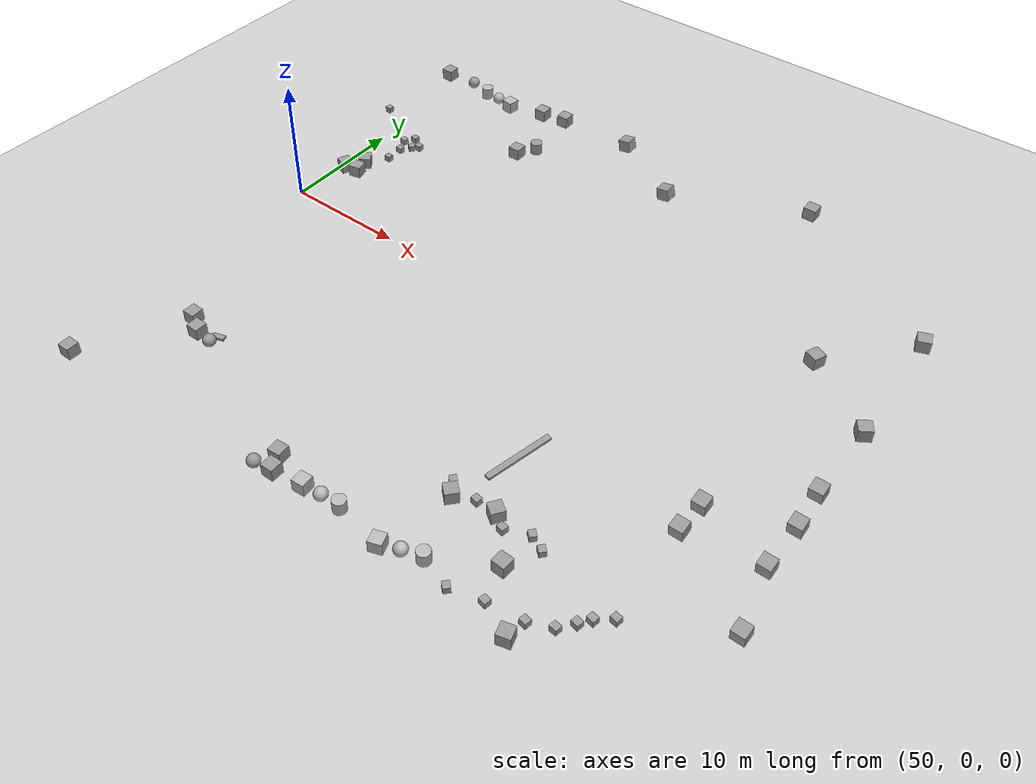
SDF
<sdf version="1.6">
 <world name="default">
  <model name="ground_plane">
   <static>1</static>
   <link name="link">
    <collision name="collision">
     <geometry><plane><normal>0 0 1</normal><size>100 100</size></plane></geometry>
     <surface><friction><ode><mu>100</mu><mu2>50</mu2></ode></friction></surface>
    </collision>
    <visual name="visual">
     <cast_shadows>0</cast_shadows>
     <geometry><plane><normal>0 0 1</normal><size>100 100</size></plane></geometry>
    </visual>
   </link>
  </model>
  <model name="unit_box_2">
   <pose>51.8431 4.81712 0.5 0 -0 0.234699</pose>
   <link name="link">
    <inertial>
     <mass>1</mass>
     <inertia>
      <ixx>0.166667</ixx>
      <ixy>0</ixy>
      <ixz>0</ixz>
      <iyy>0.166667</iyy>
      <iyz>0</iyz>
      <izz>0.166667</izz>
     </inertia>
    </inertial>
    <collision name="collision"><geometry><box><size>1 1 1</size></box></geometry></collision>
    <visual name="visual">
     <geometry><box><size>1 1 1</size></box></geometry>
     <material>
      <script><name>Gazebo/Grey</name><uri>file://media/materials/scripts/gazebo.material</uri></script>
     </material>
    </visual>
   </link>
  </model>
  <model name="unit_box_3">
   <pose>51.5945 6.09987 0.5 0 -0 0.654509</pose>
   <link name="link">
    <inertial>
     <mass>1</mass>
     <inertia>
      <ixx>0.166667</ixx>
      <ixy>0</ixy>
      <ixz>0</ixz>
      <iyy>0.166667</iyy>
      <iyz>0</iyz>
      <izz>0.166667</izz>
     </inertia>
    </inertial>
    <collision name="collision"><geometry><box><size>1 1 1</size></box></geometry></collision>
    <visual name="visual">
     <geometry><box><size>1 1 1</size></box></geometry>
     <material>
      <script><name>Gazebo/Grey</name><uri>file://media/materials/scripts/gazebo.material</uri></script>
     </material>
    </visual>
   </link>
  </model>
  <model name="unit_box_4">
   <pose>50.6488 4.66727 0.499995 -5e-06 -1.57079 1.19484</pose>
   <link name="link">
    <inertial>
     <mass>1</mass>
     <inertia>
      <ixx>0.166667</ixx>
      <ixy>0</ixy>
      <ixz>0</ixz>
      <iyy>0.166667</iyy>
      <iyz>0</iyz>
      <izz>0.166667</izz>
     </inertia>
    </inertial>
    <collision name="collision"><geometry><box><size>1 1 1</size></box></geometry></collision>
    <visual name="visual">
     <geometry><box><size>1 1 1</size></box></geometry>
     <material>
      <script><name>Gazebo/Grey</name><uri>file://media/materials/scripts/gazebo.material</uri></script>
     </material>
    </visual>
   </link>
  </model>
  <model name="unit_box_5">
   <pose>57.7555 -16.0191 0.096425 0 -0 0.32523</pose>
   <link name="link">
    <inertial>
     <mass>1</mass>
     <inertia>
      <ixx>0.166667</ixx>
      <ixy>0</ixy>
      <ixz>0</ixz>
      <iyy>0.166667</iyy>
      <iyz>0</iyz>
      <izz>0.166667</izz>
     </inertia>
    </inertial>
    <collision name="collision"><geometry><box><size>1 0.452731 0.192851</size></box></geometry></collision>
    <visual name="visual">
     <geometry><box><size>1 0.452731 0.192851</size></box></geometry>
     <material>
      <script><name>Gazebo/Grey</name><uri>file://media/materials/scripts/gazebo.material</uri></script>
     </material>
    </visual>
   </link>
  </model>
  <model name="unit_box_6">
   <pose>54.955 -15.8352 0.499995 0 1e-05 -2e-06</pose>
   <link name="link">
    <inertial>
     <mass>1</mass>
     <inertia>
      <ixx>0.166667</ixx>
      <ixy>0</ixy>
      <ixz>0</ixz>
      <iyy>0.166667</iyy>
      <iyz>0</iyz>
      <izz>0.166667</izz>
     </inertia>
    </inertial>
    <collision name="collision"><geometry><box><size>1 1 1</size></box></geometry></collision>
    <visual name="visual">
     <geometry><box><size>1 1 1</size></box></geometry>
     <material>
      <script><name>Gazebo/Grey</name><uri>file://media/materials/scripts/gazebo.material</uri></script>
     </material>
    </visual>
   </link>
  </model>
  <model name="unit_box_7">
   <pose>56.317 -16.6763 0.499999 0 0 -0.001364</pose>
   <link name="link">
    <inertial>
     <mass>1</mass>
     <inertia>
      <ixx>0.166667</ixx>
      <ixy>0</ixy>
      <ixz>0</ixz>
      <iyy>0.166667</iyy>
      <iyz>0</iyz>
      <izz>0.166667</izz>
     </inertia>
    </inertial>
    <collision name="collision"><geometry><box><size>1 0.999999 0.999999</size></box></geometry></collision>
    <visual name="visual">
     <geometry><box><size>1 0.999999 0.999999</size></box></geometry>
     <material>
      <script><name>Gazebo/Grey</name><uri>file://media/materials/scripts/gazebo.material</uri></script>
     </material>
    </visual>
   </link>
  </model>
  <model name="unit_box_16">
   <pose>69.939 -22.2819 0.499995 0 1e-05 0.022827</pose>
   <link name="link">
    <inertial>
     <mass>1</mass>
     <inertia>
      <ixx>0.166667</ixx>
      <ixy>0</ixy>
      <ixz>0</ixz>
      <iyy>0.166667</iyy>
      <iyz>0</iyz>
      <izz>0.166667</izz>
     </inertia>
    </inertial>
    <collision name="collision"><geometry><box><size>1 1 1</size></box></geometry></collision>
    <visual name="visual">
     <geometry><box><size>1 1 1</size></box></geometry>
     <material>
      <script><name>Gazebo/Grey</name><uri>file://media/materials/scripts/gazebo.material</uri></script>
     </material>
    </visual>
   </link>
  </model>
  <model name="unit_box_17">
   <pose>80.211 -16.617 0.499998 0 -0 0.859609</pose>
   <link name="link">
    <inertial>
     <mass>1</mass>
     <inertia>
      <ixx>0.166667</ixx>
      <ixy>0</ixy>
      <ixz>0</ixz>
      <iyy>0.166667</iyy>
      <iyz>0</iyz>
      <izz>0.166667</izz>
     </inertia>
    </inertial>
    <collision name="collision">
     <geometry><box><size>0.999997 0.999998 0.999996</size></box></geometry>
    </collision>
    <visual name="visual">
     <geometry><box><size>0.999997 0.999998 0.999996</size></box></geometry>
     <material>
      <script><name>Gazebo/Grey</name><uri>file://media/materials/scripts/gazebo.material</uri></script>
     </material>
    </visual>
   </link>
  </model>
  <model name="unit_box_21">
   <pose>89.1775 -22.4495 0.5 0 -0 0.2806</pose>
   <link name="link">
    <inertial>
     <mass>1</mass>
     <inertia>
      <ixx>0.166667</ixx>
      <ixy>0</ixy>
      <ixz>0</ixz>
      <iyy>0.166667</iyy>
      <iyz>0</iyz>
      <izz>0.166667</izz>
     </inertia>
    </inertial>
    <collision name="collision"><geometry><box><size>1 1 1</size></box></geometry></collision>
    <visual name="visual">
     <geometry><box><size>1 1 1</size></box></geometry>
     <material>
      <script><name>Gazebo/Grey</name><uri>file://media/materials/scripts/gazebo.material</uri></script>
     </material>
    </visual>
   </link>
  </model>
  <model name="unit_box_22">
   <pose>83.356 -16.0066 0.499998 0 -0 -0.587225</pose>
   <link name="link">
    <inertial>
     <mass>1</mass>
     <inertia>
      <ixx>0.166667</ixx>
      <ixy>0</ixy>
      <ixz>0</ixz>
      <iyy>0.166667</iyy>
      <iyz>0</iyz>
      <izz>0.166667</izz>
     </inertia>
    </inertial>
    <collision name="collision"><geometry><box><size>0.999997 1 0.999997</size></box></geometry></collision>
    <visual name="visual">
     <geometry><box><size>0.999997 1 0.999997</size></box></geometry>
     <material>
      <script><name>Gazebo/Grey</name><uri>file://media/materials/scripts/gazebo.material</uri></script>
     </material>
    </visual>
   </link>
  </model>
  <model name="unit_box_24">
   <pose>50.7297 -23.6615 0.500006 1e-06 5e-06 0.0008</pose>
   <link name="link">
    <inertial>
     <mass>1</mass>
     <inertia>
      <ixx>0.166667</ixx>
      <ixy>0</ixy>
      <ixz>0</ixz>
      <iyy>0.166667</iyy>
      <iyz>0</iyz>
      <izz>0.166667</izz>
     </inertia>
    </inertial>
    <collision name="collision"><geometry><box><size>1 1 1</size></box></geometry></collision>
    <visual name="visual">
     <geometry><box><size>1 1 1</size></box></geometry>
     <material>
      <script><name>Gazebo/Grey</name><uri>file://media/materials/scripts/gazebo.material</uri></script>
     </material>
    </visual>
   </link>
  </model>
  <model name="unit_box_25">
   <pose>93.3866 5.97098 3.00001 0 -0 -0.379821</pose>
   <link name="link">
    <inertial>
     <mass>1</mass>
     <inertia>
      <ixx>0.166667</ixx>
      <ixy>0</ixy>
      <ixz>0</ixz>
      <iyy>0.166667</iyy>
      <iyz>0</iyz>
      <izz>0.166667</izz>
     </inertia>
    </inertial>
    <collision name="collision"><geometry><box><size>1 1 1</size></box></geometry></collision>
    <visual name="visual">
     <geometry><box><size>1 1 1</size></box></geometry>
     <material>
      <script><name>Gazebo/Grey</name><uri>file://media/materials/scripts/gazebo.material</uri></script>
     </material>
    </visual>
   </link>
  </model>
  <model name="unit_box_26">
   <pose>98.812 -6.35157 1.96885 0.165149 0.000132 7e-06</pose>
   <link name="link">
    <inertial>
     <mass>1</mass>
     <inertia>
      <ixx>0.166667</ixx>
      <ixy>0</ixy>
      <ixz>0</ixz>
      <iyy>0.166667</iyy>
      <iyz>0</iyz>
      <izz>0.166667</izz>
     </inertia>
    </inertial>
    <collision name="collision"><geometry><box><size>1 1 1</size></box></geometry></collision>
    <visual name="visual">
     <geometry><box><size>1 1 1</size></box></geometry>
     <material>
      <script><name>Gazebo/Grey</name><uri>file://media/materials/scripts/gazebo.material</uri></script>
     </material>
    </visual>
   </link>
  </model>
  <model name="unit_box_26_clone">
   <pose>93.15 -10.4727 1.28275 0.165149 0.000126 3.8e-05</pose>
   <link name="link">
    <inertial>
     <mass>1</mass>
     <inertia>
      <ixx>0.166667</ixx>
      <ixy>0</ixy>
      <ixz>0</ixz>
      <iyy>0.166667</iyy>
      <iyz>0</iyz>
      <izz>0.166667</izz>
     </inertia>
    </inertial>
    <collision name="collision"><geometry><box><size>1 1 1</size></box></geometry></collision>
    <visual name="visual">
     <geometry><box><size>1 1 1</size></box></geometry>
     <material>
      <script><name>Gazebo/Grey</name><uri>file://media/materials/scripts/gazebo.material</uri></script>
     </material>
    </visual>
   </link>
  </model>
  <model name="unit_box_26_clone_0">
   <pose>99.5662 -14.0398 0.687377 0.165152 0.000398 -0.001591</pose>
   <link name="link">
    <inertial>
     <mass>1</mass>
     <inertia>
      <ixx>0.166667</ixx>
      <ixy>0</ixy>
      <ixz>0</ixz>
      <iyy>0.166667</iyy>
      <iyz>0</iyz>
      <izz>0.166667</izz>
     </inertia>
    </inertial>
    <collision name="collision"><geometry><box><size>1 1 1</size></box></geometry></collision>
    <visual name="visual">
     <geometry><box><size>1 1 1</size></box></geometry>
     <material>
      <script><name>Gazebo/Grey</name><uri>file://media/materials/scripts/gazebo.material</uri></script>
     </material>
    </visual>
   </link>
  </model>
  <model name="unit_box_26_clone_0_clone">
   <pose>98.675 -3.58129 2.43058 0.165139 -0.001801 0.011605</pose>
   <link name="link">
    <inertial>
     <mass>1</mass>
     <inertia>
      <ixx>0.166667</ixx>
      <ixy>0</ixy>
      <ixz>0</ixz>
      <iyy>0.166667</iyy>
      <iyz>0</iyz>
      <izz>0.166667</izz>
     </inertia>
    </inertial>
    <collision name="collision"><geometry><box><size>1 1 1</size></box></geometry></collision>
    <visual name="visual">
     <geometry><box><size>1 1 1</size></box></geometry>
     <material>
      <script><name>Gazebo/Grey</name><uri>file://media/materials/scripts/gazebo.material</uri></script>
     </material>
    </visual>
   </link>
  </model>
  <model name="unit_box_26_clone_0_clone_0">
   <pose>93.331 -8.27111 1.64965 0.165148 0.000447 -0.001884</pose>
   <link name="link">
    <inertial>
     <mass>1</mass>
     <inertia>
      <ixx>0.166667</ixx>
      <ixy>0</ixy>
      <ixz>0</ixz>
      <iyy>0.166667</iyy>
      <iyz>0</iyz>
      <izz>0.166667</izz>
     </inertia>
    </inertial>
    <collision name="collision"><geometry><box><size>1 1 1</size></box></geometry></collision>
    <visual name="visual">
     <geometry><box><size>1 1 1</size></box></geometry>
     <material>
      <script><name>Gazebo/Grey</name><uri>file://media/materials/scripts/gazebo.material</uri></script>
     </material>
    </visual>
   </link>
  </model>
  <model name="unit_box_26_clone_0_clone_1">
   <pose>98.6506 -9.66818 1.4161 0.165148 0.000448 -0.001894</pose>
   <link name="link">
    <inertial>
     <mass>1</mass>
     <inertia>
      <ixx>0.166667</ixx>
      <ixy>0</ixy>
      <ixz>0</ixz>
      <iyy>0.166667</iyy>
      <iyz>0</iyz>
      <izz>0.166667</izz>
     </inertia>
    </inertial>
    <collision name="collision"><geometry><box><size>1 1 1</size></box></geometry></collision>
    <visual name="visual">
     <geometry><box><size>1 1 1</size></box></geometry>
     <material>
      <script><name>Gazebo/Grey</name><uri>file://media/materials/scripts/gazebo.material</uri></script>
     </material>
    </visual>
   </link>
  </model>
  <model name="unit_box_25_clone">
   <pose>98.8348 2.05797 3.00001 0 -0 0.592525</pose>
   <link name="link">
    <inertial>
     <mass>1</mass>
     <inertia>
      <ixx>0.166667</ixx>
      <ixy>0</ixy>
      <ixz>0</ixz>
      <iyy>0.166667</iyy>
      <iyz>0</iyz>
      <izz>0.166667</izz>
     </inertia>
    </inertial>
    <collision name="collision"><geometry><box><size>1 1 1</size></box></geometry></collision>
    <visual name="visual">
     <geometry><box><size>1 1 1</size></box></geometry>
     <material>
      <script><name>Gazebo/Grey</name><uri>file://media/materials/scripts/gazebo.material</uri></script>
     </material>
    </visual>
   </link>
  </model>
  <model name="unit_box_25_clone_0">
   <pose>98.4857 11.9865 3.00001 0 -0 0.366055</pose>
   <link name="link">
    <inertial>
     <mass>1</mass>
     <inertia>
      <ixx>0.166667</ixx>
      <ixy>0</ixy>
      <ixz>0</ixz>
      <iyy>0.166667</iyy>
      <iyz>0</iyz>
      <izz>0.166667</izz>
     </inertia>
    </inertial>
    <collision name="collision"><geometry><box><size>1 1 1</size></box></geometry></collision>
    <visual name="visual">
     <geometry><box><size>1 1 1</size></box></geometry>
     <material>
      <script><name>Gazebo/Grey</name><uri>file://media/materials/scripts/gazebo.material</uri></script>
     </material>
    </visual>
   </link>
  </model>
  <model name="unit_box_31">
   <pose>59.0723 21.3567 0.499995 1e-05 -0 -1.1e-05</pose>
   <link name="link">
    <inertial>
     <mass>1</mass>
     <inertia>
      <ixx>0.166667</ixx>
      <ixy>0</ixy>
      <ixz>0</ixz>
      <iyy>0.166667</iyy>
      <iyz>0</iyz>
      <izz>0.166667</izz>
     </inertia>
    </inertial>
    <collision name="collision"><geometry><box><size>1 1 1</size></box></geometry></collision>
    <visual name="visual">
     <geometry><box><size>1 1 1</size></box></geometry>
     <material>
      <script><name>Gazebo/Grey</name><uri>file://media/materials/scripts/gazebo.material</uri></script>
     </material>
    </visual>
   </link>
  </model>
  <model name="unit_box_31_clone">
   <pose>75.3655 15.7298 2.71065 0.000165 -0.175238 -0.000152</pose>
   <link name="link">
    <inertial>
     <mass>1</mass>
     <inertia>
      <ixx>0.166667</ixx>
      <ixy>0</ixy>
      <ixz>0</ixz>
      <iyy>0.166667</iyy>
      <iyz>0</iyz>
      <izz>0.166667</izz>
     </inertia>
    </inertial>
    <collision name="collision"><geometry><box><size>1 1 1</size></box></geometry></collision>
    <visual name="visual">
     <geometry><box><size>1 1 1</size></box></geometry>
     <material>
      <script><name>Gazebo/Grey</name><uri>file://media/materials/scripts/gazebo.material</uri></script>
     </material>
    </visual>
   </link>
  </model>
  <model name="unit_box_31_clone_0">
   <pose>68.3762 20.871 1.47389 0.000313 -0.175237 -0.000998</pose>
   <link name="link">
    <inertial>
     <mass>1</mass>
     <inertia>
      <ixx>0.166667</ixx>
      <ixy>0</ixy>
      <ixz>0</ixz>
      <iyy>0.166667</iyy>
      <iyz>0</iyz>
      <izz>0.166667</izz>
     </inertia>
    </inertial>
    <collision name="collision"><geometry><box><size>1 1 1</size></box></geometry></collision>
    <visual name="visual">
     <geometry><box><size>1 1 1</size></box></geometry>
     <material>
      <script><name>Gazebo/Grey</name><uri>file://media/materials/scripts/gazebo.material</uri></script>
     </material>
    </visual>
   </link>
  </model>
  <model name="unit_box_31_clone_1">
   <pose>85.7215 20.2953 3.00001 0 -0 -0.000128</pose>
   <link name="link">
    <inertial>
     <mass>1</mass>
     <inertia>
      <ixx>0.166667</ixx>
      <ixy>0</ixy>
      <ixz>0</ixz>
      <iyy>0.166667</iyy>
      <iyz>0</iyz>
      <izz>0.166667</izz>
     </inertia>
    </inertial>
    <collision name="collision"><geometry><box><size>1 1 1</size></box></geometry></collision>
    <visual name="visual">
     <geometry><box><size>1 1 1</size></box></geometry>
     <material>
      <script><name>Gazebo/Grey</name><uri>file://media/materials/scripts/gazebo.material</uri></script>
     </material>
    </visual>
   </link>
  </model>
  <model name="unit_box_31_clone_2">
   <pose>60.8315 15.2559 0.499995 0 1e-05 0</pose>
   <link name="link">
    <inertial>
     <mass>1</mass>
     <inertia>
      <ixx>0.166667</ixx>
      <ixy>0</ixy>
      <ixz>0</ixz>
      <iyy>0.166667</iyy>
      <iyz>0</iyz>
      <izz>0.166667</izz>
     </inertia>
    </inertial>
    <collision name="collision"><geometry><box><size>1 1 1</size></box></geometry></collision>
    <visual name="visual">
     <geometry><box><size>1 1 1</size></box></geometry>
     <material>
      <script><name>Gazebo/Grey</name><uri>file://media/materials/scripts/gazebo.material</uri></script>
     </material>
    </visual>
   </link>
  </model>
  <model name="unit_box_37">
   <pose>48.2626 21.3291 0.499995 0 1e-05 5e-06</pose>
   <link name="link">
    <inertial>
     <mass>1</mass>
     <inertia>
      <ixx>0.166667</ixx>
      <ixy>0</ixy>
      <ixz>0</ixz>
      <iyy>0.166667</iyy>
      <iyz>0</iyz>
      <izz>0.166667</izz>
     </inertia>
    </inertial>
    <collision name="collision"><geometry><box><size>1 1 1</size></box></geometry></collision>
    <visual name="visual">
     <geometry><box><size>1 1 1</size></box></geometry>
     <material>
      <script><name>Gazebo/Grey</name><uri>file://media/materials/scripts/gazebo.material</uri></script>
     </material>
    </visual>
   </link>
  </model>
  <model name="unit_sphere_4">
   <pose>51.0366 21.4435 0.5 0 -0 0</pose>
   <link name="link">
    <inertial>
     <mass>1</mass>
     <inertia><ixx>0.1</ixx><ixy>0</ixy><ixz>0</ixz><iyy>0.1</iyy><iyz>0</iyz><izz>0.1</izz></inertia>
    </inertial>
    <collision name="collision"><geometry><sphere><radius>0.5</radius></sphere></geometry></collision>
    <visual name="visual">
     <geometry><sphere><radius>0.5</radius></sphere></geometry>
     <material>
      <script><name>Gazebo/Grey</name><uri>file://media/materials/scripts/gazebo.material</uri></script>
     </material>
    </visual>
   </link>
  </model>
  <model name="unit_box_38">
   <pose>61.2276 21.7521 0.499995 0 1e-05 1e-05</pose>
   <link name="link">
    <inertial>
     <mass>1</mass>
     <inertia>
      <ixx>0.166667</ixx>
      <ixy>0</ixy>
      <ixz>0</ixz>
      <iyy>0.166667</iyy>
      <iyz>0</iyz>
      <izz>0.166667</izz>
     </inertia>
    </inertial>
    <collision name="collision"><geometry><box><size>1 1 1</size></box></geometry></collision>
    <visual name="visual">
     <geometry><box><size>1 1 1</size></box></geometry>
     <material>
      <script><name>Gazebo/Grey</name><uri>file://media/materials/scripts/gazebo.material</uri></script>
     </material>
    </visual>
   </link>
  </model>
  <model name="unit_sphere_5">
   <pose>68.539 -22.5768 0.5 0 -0 0</pose>
   <link name="link">
    <inertial>
     <mass>1</mass>
     <inertia><ixx>0.1</ixx><ixy>0</ixy><ixz>0</ixz><iyy>0.1</iyy><iyz>0</iyz><izz>0.1</izz></inertia>
    </inertial>
    <collision name="collision"><geometry><sphere><radius>0.5</radius></sphere></geometry></collision>
    <visual name="visual">
     <geometry><sphere><radius>0.5</radius></sphere></geometry>
     <material>
      <script><name>Gazebo/Grey</name><uri>file://media/materials/scripts/gazebo.material</uri></script>
     </material>
    </visual>
   </link>
  </model>
  <model name="unit_box_15_clone">
   <pose>69.334 -21.087 0.499995 -1.57079 -0 0.084763</pose>
   <link name="link">
    <inertial>
     <mass>1</mass>
     <inertia>
      <ixx>0.166667</ixx>
      <ixy>0</ixy>
      <ixz>0</ixz>
      <iyy>0.166667</iyy>
      <iyz>0</iyz>
      <izz>0.166667</izz>
     </inertia>
    </inertial>
    <collision name="collision"><geometry><box><size>1 1 1</size></box></geometry></collision>
    <visual name="visual">
     <geometry><box><size>1 1 1</size></box></geometry>
     <material>
      <script><name>Gazebo/Grey</name><uri>file://media/materials/scripts/gazebo.material</uri></script>
     </material>
    </visual>
   </link>
  </model>
  <model name="unit_box_17_clone">
   <pose>86.0986 -15.887 0.259057 0 -0 0.859609</pose>
   <link name="link">
    <inertial>
     <mass>1</mass>
     <inertia>
      <ixx>0.166667</ixx>
      <ixy>0</ixy>
      <ixz>0</ixz>
      <iyy>0.166667</iyy>
      <iyz>0</iyz>
      <izz>0.166667</izz>
     </inertia>
    </inertial>
    <collision name="collision"><geometry><box><size>0.523589 0.58109 0.518114</size></box></geometry></collision>
    <visual name="visual">
     <geometry><box><size>0.523589 0.58109 0.518114</size></box></geometry>
     <material>
      <script><name>Gazebo/Grey</name><uri>file://media/materials/scripts/gazebo.material</uri></script>
     </material>
    </visual>
   </link>
  </model>
  <model name="unit_box_17_clone_0">
   <pose>87.2271 -16.4299 0.259057 0 -0 0.859609</pose>
   <link name="link">
    <inertial>
     <mass>1</mass>
     <inertia>
      <ixx>0.166667</ixx>
      <ixy>0</ixy>
      <ixz>0</ixz>
      <iyy>0.166667</iyy>
      <iyz>0</iyz>
      <izz>0.166667</izz>
     </inertia>
    </inertial>
    <collision name="collision"><geometry><box><size>0.523589 0.58109 0.518114</size></box></geometry></collision>
    <visual name="visual">
     <geometry><box><size>0.523589 0.58109 0.518114</size></box></geometry>
     <material>
      <script><name>Gazebo/Grey</name><uri>file://media/materials/scripts/gazebo.material</uri></script>
     </material>
    </visual>
   </link>
  </model>
  <model name="unit_box_17_clone_1">
   <pose>84.3557 -22.0017 0.259057 0 -0 0.859609</pose>
   <link name="link">
    <inertial>
     <mass>1</mass>
     <inertia>
      <ixx>0.166667</ixx>
      <ixy>0</ixy>
      <ixz>0</ixz>
      <iyy>0.166667</iyy>
      <iyz>0</iyz>
      <izz>0.166667</izz>
     </inertia>
    </inertial>
    <collision name="collision"><geometry><box><size>0.523589 0.58109 0.518114</size></box></geometry></collision>
    <visual name="visual">
     <geometry><box><size>0.523589 0.58109 0.518114</size></box></geometry>
     <material>
      <script><name>Gazebo/Grey</name><uri>file://media/materials/scripts/gazebo.material</uri></script>
     </material>
    </visual>
   </link>
  </model>
  <model name="unit_box_17_clone_2">
   <pose>84.3285 -16.6234 0.259057 0 -0 1.40468</pose>
   <link name="link">
    <inertial>
     <mass>1</mass>
     <inertia>
      <ixx>0.166667</ixx>
      <ixy>0</ixy>
      <ixz>0</ixz>
      <iyy>0.166667</iyy>
      <iyz>0</iyz>
      <izz>0.166667</izz>
     </inertia>
    </inertial>
    <collision name="collision"><geometry><box><size>0.523589 0.58109 0.518114</size></box></geometry></collision>
    <visual name="visual">
     <geometry><box><size>0.523589 0.58109 0.518114</size></box></geometry>
     <material>
      <script><name>Gazebo/Grey</name><uri>file://media/materials/scripts/gazebo.material</uri></script>
     </material>
    </visual>
   </link>
  </model>
  <model name="unit_box_17_clone_3">
   <pose>79.5622 -15.6349 0.259057 0 -0 0.859609</pose>
   <link name="link">
    <inertial>
     <mass>1</mass>
     <inertia>
      <ixx>0.166667</ixx>
      <ixy>0</ixy>
      <ixz>0</ixz>
      <iyy>0.166667</iyy>
      <iyz>0</iyz>
      <izz>0.166667</izz>
     </inertia>
    </inertial>
    <collision name="collision"><geometry><box><size>0.523589 0.58109 0.518114</size></box></geometry></collision>
    <visual name="visual">
     <geometry><box><size>0.523589 0.58109 0.518114</size></box></geometry>
     <material>
      <script><name>Gazebo/Grey</name><uri>file://media/materials/scripts/gazebo.material</uri></script>
     </material>
    </visual>
   </link>
  </model>
  <model name="unit_box_40">
   <pose>86.0683 -18.8156 0.5 0 -0 -1.60529</pose>
   <link name="link">
    <inertial>
     <mass>1</mass>
     <inertia>
      <ixx>0.166667</ixx>
      <ixy>0</ixy>
      <ixz>0</ixz>
      <iyy>0.166667</iyy>
      <iyz>0</iyz>
      <izz>0.166667</izz>
     </inertia>
    </inertial>
    <collision name="collision"><geometry><box><size>0.999999 0.999999 1</size></box></geometry></collision>
    <visual name="visual">
     <geometry><box><size>0.999999 0.999999 1</size></box></geometry>
     <material>
      <script><name>Gazebo/Grey</name><uri>file://media/materials/scripts/gazebo.material</uri></script>
     </material>
    </visual>
   </link>
  </model>
  <model name="unit_box_40_clone">
   <pose>81.5431 -11.3532 0.088279 3.14158 -0.001565 -1.77348</pose>
   <link name="link">
    <inertial>
     <mass>1</mass>
     <inertia>
      <ixx>0.166667</ixx>
      <ixy>0</ixy>
      <ixz>0</ixz>
      <iyy>0.166667</iyy>
      <iyz>0</iyz>
      <izz>0.166667</izz>
     </inertia>
    </inertial>
    <collision name="collision"><geometry><box><size>5.39645 0.477356 0.184992</size></box></geometry></collision>
    <visual name="visual">
     <geometry><box><size>5.39645 0.477356 0.184992</size></box></geometry>
     <material>
      <script><name>Gazebo/Grey</name><uri>file://media/materials/scripts/gazebo.material</uri></script>
     </material>
    </visual>
   </link>
  </model>
  <model name="unit_sphere_6">
   <pose>57.848 -16.901 0.5 0 -0 0</pose>
   <link name="link">
    <inertial>
     <mass>1</mass>
     <inertia><ixx>0.1</ixx><ixy>0</ixy><ixz>0</ixz><iyy>0.1</iyy><iyz>0</iyz><izz>0.1</izz></inertia>
    </inertial>
    <collision name="collision"><geometry><sphere><radius>0.5</radius></sphere></geometry></collision>
    <visual name="visual">
     <geometry><sphere><radius>0.5</radius></sphere></geometry>
     <material>
      <script><name>Gazebo/Grey</name><uri>file://media/materials/scripts/gazebo.material</uri></script>
     </material>
    </visual>
   </link>
  </model>
  <model name="unit_cylinder_0">
   <pose>61.7716 16.7816 0.49999 0 -0 2e-06</pose>
   <link name="link">
    <inertial>
     <mass>1</mass>
     <inertia><ixx>0.145833</ixx><ixy>0</ixy><ixz>0</ixz><iyy>0.145833</iyy><iyz>0</iyz><izz>0.125</izz></inertia>
    </inertial>
    <collision name="collision">
     <geometry><cylinder><radius>0.5</radius><length>1</length></cylinder></geometry>
    </collision>
    <visual name="visual">
     <geometry><cylinder><radius>0.5</radius><length>1</length></cylinder></geometry>
     <material>
      <script><name>Gazebo/Grey</name><uri>file://media/materials/scripts/gazebo.material</uri></script>
     </material>
    </visual>
   </link>
  </model>
  <model name="unit_box_30_clone_4_clone_2">
   <pose>47.6289 13.5333 0.252534 0 0 -0.107917</pose>
   <link name="link">
    <inertial>
     <mass>1</mass>
     <inertia>
      <ixx>0.166667</ixx>
      <ixy>0</ixy>
      <ixz>0</ixz>
      <iyy>0.166667</iyy>
      <iyz>0</iyz>
      <izz>0.166667</izz>
     </inertia>
    </inertial>
    <collision name="collision"><geometry><box><size>0.522325 0.47304 0.505069</size></box></geometry></collision>
    <visual name="visual">
     <geometry><box><size>0.522325 0.47304 0.505069</size></box></geometry>
     <material>
      <script><name>Gazebo/Grey</name><uri>file://media/materials/scripts/gazebo.material</uri></script>
     </material>
    </visual>
   </link>
  </model>
  <model name="unit_box_30_clone_4_clone_clone">
   <pose>53.132 10.26 0.252534 0 0 -0.656007</pose>
   <link name="link">
    <inertial>
     <mass>1</mass>
     <inertia>
      <ixx>0.166667</ixx>
      <ixy>0</ixy>
      <ixz>0</ixz>
      <iyy>0.166667</iyy>
      <iyz>0</iyz>
      <izz>0.166667</izz>
     </inertia>
    </inertial>
    <collision name="collision"><geometry><box><size>0.522325 0.47304 0.505069</size></box></geometry></collision>
    <visual name="visual">
     <geometry><box><size>0.522325 0.47304 0.505069</size></box></geometry>
     <material>
      <script><name>Gazebo/Grey</name><uri>file://media/materials/scripts/gazebo.material</uri></script>
     </material>
    </visual>
   </link>
  </model>
  <model name="unit_box_30_clone_4_clone_2_clone">
   <pose>52.579 11.4066 0.252534 0 0 -0.107917</pose>
   <link name="link">
    <inertial>
     <mass>1</mass>
     <inertia>
      <ixx>0.166667</ixx>
      <ixy>0</ixy>
      <ixz>0</ixz>
      <iyy>0.166667</iyy>
      <iyz>0</iyz>
      <izz>0.166667</izz>
     </inertia>
    </inertial>
    <collision name="collision"><geometry><box><size>0.522325 0.47304 0.505069</size></box></geometry></collision>
    <visual name="visual">
     <geometry><box><size>0.522325 0.47304 0.505069</size></box></geometry>
     <material>
      <script><name>Gazebo/Grey</name><uri>file://media/materials/scripts/gazebo.material</uri></script>
     </material>
    </visual>
   </link>
  </model>
  <model name="unit_box_30_clone_4_clone_2_clone_0">
   <pose>52.5636 9.45509 0.252534 0 0 -0.107917</pose>
   <link name="link">
    <inertial>
     <mass>1</mass>
     <inertia>
      <ixx>0.166667</ixx>
      <ixy>0</ixy>
      <ixz>0</ixz>
      <iyy>0.166667</iyy>
      <iyz>0</iyz>
      <izz>0.166667</izz>
     </inertia>
    </inertial>
    <collision name="collision"><geometry><box><size>0.522325 0.47304 0.505069</size></box></geometry></collision>
    <visual name="visual">
     <geometry><box><size>0.522325 0.47304 0.505069</size></box></geometry>
     <material>
      <script><name>Gazebo/Grey</name><uri>file://media/materials/scripts/gazebo.material</uri></script>
     </material>
    </visual>
   </link>
  </model>
  <model name="unit_box_30_clone_4_clone_2_clone_1">
   <pose>53.6425 10.7055 0.252534 0 0 -0.107917</pose>
   <link name="link">
    <inertial>
     <mass>1</mass>
     <inertia>
      <ixx>0.166667</ixx>
      <ixy>0</ixy>
      <ixz>0</ixz>
      <iyy>0.166667</iyy>
      <iyz>0</iyz>
      <izz>0.166667</izz>
     </inertia>
    </inertial>
    <collision name="collision"><geometry><box><size>0.522325 0.47304 0.505069</size></box></geometry></collision>
    <visual name="visual">
     <geometry><box><size>0.522325 0.47304 0.505069</size></box></geometry>
     <material>
      <script><name>Gazebo/Grey</name><uri>file://media/materials/scripts/gazebo.material</uri></script>
     </material>
    </visual>
   </link>
  </model>
  <model name="unit_box_30_clone_4_clone_2_clone_2">
   <pose>51.994 10.6207 0.252534 0 0 -0.107917</pose>
   <link name="link">
    <inertial>
     <mass>1</mass>
     <inertia>
      <ixx>0.166667</ixx>
      <ixy>0</ixy>
      <ixz>0</ixz>
      <iyy>0.166667</iyy>
      <iyz>0</iyz>
      <izz>0.166667</izz>
     </inertia>
    </inertial>
    <collision name="collision"><geometry><box><size>0.522325 0.47304 0.505069</size></box></geometry></collision>
    <visual name="visual">
     <geometry><box><size>0.522325 0.47304 0.505069</size></box></geometry>
     <material>
      <script><name>Gazebo/Grey</name><uri>file://media/materials/scripts/gazebo.material</uri></script>
     </material>
    </visual>
   </link>
  </model>
  <model name="unit_box_30_clone_4_clone_2_clone_3">
   <pose>52.6136 7.91761 0.252534 0 0 -0.107917</pose>
   <link name="link">
    <inertial>
     <mass>1</mass>
     <inertia>
      <ixx>0.166667</ixx>
      <ixy>0</ixy>
      <ixz>0</ixz>
      <iyy>0.166667</iyy>
      <iyz>0</iyz>
      <izz>0.166667</izz>
     </inertia>
    </inertial>
    <collision name="collision"><geometry><box><size>0.522325 0.47304 0.505069</size></box></geometry></collision>
    <visual name="visual">
     <geometry><box><size>0.522325 0.47304 0.505069</size></box></geometry>
     <material>
      <script><name>Gazebo/Grey</name><uri>file://media/materials/scripts/gazebo.material</uri></script>
     </material>
    </visual>
   </link>
  </model>
  <model name="unit_box_17_clone_2_clone">
   <pose>81.7234 -15.91 0.259057 0 -0 1.40468</pose>
   <link name="link">
    <inertial>
     <mass>1</mass>
     <inertia>
      <ixx>0.166667</ixx>
      <ixy>0</ixy>
      <ixz>0</ixz>
      <iyy>0.166667</iyy>
      <iyz>0</iyz>
      <izz>0.166667</izz>
     </inertia>
    </inertial>
    <collision name="collision"><geometry><box><size>0.523589 0.58109 0.518114</size></box></geometry></collision>
    <visual name="visual">
     <geometry><box><size>0.523589 0.58109 0.518114</size></box></geometry>
     <material>
      <script><name>Gazebo/Grey</name><uri>file://media/materials/scripts/gazebo.material</uri></script>
     </material>
    </visual>
   </link>
  </model>
  <model name="unit_box_17_clone_2_clone_0">
   <pose>92.3599 -18.4013 0.259057 0 -0 1.40468</pose>
   <link name="link">
    <inertial>
     <mass>1</mass>
     <inertia>
      <ixx>0.166667</ixx>
      <ixy>0</ixy>
      <ixz>0</ixz>
      <iyy>0.166667</iyy>
      <iyz>0</iyz>
      <izz>0.166667</izz>
     </inertia>
    </inertial>
    <collision name="collision"><geometry><box><size>0.523589 0.58109 0.518114</size></box></geometry></collision>
    <visual name="visual">
     <geometry><box><size>0.523589 0.58109 0.518114</size></box></geometry>
     <material>
      <script><name>Gazebo/Grey</name><uri>file://media/materials/scripts/gazebo.material</uri></script>
     </material>
    </visual>
   </link>
  </model>
  <model name="unit_box_17_clone_2_clone_1">
   <pose>93.4076 -17.5447 0.259057 0 -0 1.40468</pose>
   <link name="link">
    <inertial>
     <mass>1</mass>
     <inertia>
      <ixx>0.166667</ixx>
      <ixy>0</ixy>
      <ixz>0</ixz>
      <iyy>0.166667</iyy>
      <iyz>0</iyz>
      <izz>0.166667</izz>
     </inertia>
    </inertial>
    <collision name="collision"><geometry><box><size>0.523589 0.58109 0.518114</size></box></geometry></collision>
    <visual name="visual">
     <geometry><box><size>0.523589 0.58109 0.518114</size></box></geometry>
     <material>
      <script><name>Gazebo/Grey</name><uri>file://media/materials/scripts/gazebo.material</uri></script>
     </material>
    </visual>
   </link>
  </model>
  <model name="unit_box_17_clone_2_clone_2">
   <pose>91.0153 -20.2042 0.259057 0 -0 1.40468</pose>
   <link name="link">
    <inertial>
     <mass>1</mass>
     <inertia>
      <ixx>0.166667</ixx>
      <ixy>0</ixy>
      <ixz>0</ixz>
      <iyy>0.166667</iyy>
      <iyz>0</iyz>
      <izz>0.166667</izz>
     </inertia>
    </inertial>
    <collision name="collision"><geometry><box><size>0.523589 0.58109 0.518114</size></box></geometry></collision>
    <visual name="visual">
     <geometry><box><size>0.523589 0.58109 0.518114</size></box></geometry>
     <material>
      <script><name>Gazebo/Grey</name><uri>file://media/materials/scripts/gazebo.material</uri></script>
     </material>
    </visual>
   </link>
  </model>
  <model name="unit_box_17_clone_2_clone_3">
   <pose>89.4034 -20.953 0.259057 0 -0 1.40468</pose>
   <link name="link">
    <inertial>
     <mass>1</mass>
     <inertia>
      <ixx>0.166667</ixx>
      <ixy>0</ixy>
      <ixz>0</ixz>
      <iyy>0.166667</iyy>
      <iyz>0</iyz>
      <izz>0.166667</izz>
     </inertia>
    </inertial>
    <collision name="collision"><geometry><box><size>0.523589 0.58109 0.518114</size></box></geometry></collision>
    <visual name="visual">
     <geometry><box><size>0.523589 0.58109 0.518114</size></box></geometry>
     <material>
      <script><name>Gazebo/Grey</name><uri>file://media/materials/scripts/gazebo.material</uri></script>
     </material>
    </visual>
   </link>
  </model>
  <model name="unit_box_17_clone_2_clone_4">
   <pose>86.751 -21.3375 0.259057 0 -0 1.40468</pose>
   <link name="link">
    <inertial>
     <mass>1</mass>
     <inertia>
      <ixx>0.166667</ixx>
      <ixy>0</ixy>
      <ixz>0</ixz>
      <iyy>0.166667</iyy>
      <iyz>0</iyz>
      <izz>0.166667</izz>
     </inertia>
    </inertial>
    <collision name="collision"><geometry><box><size>0.523589 0.58109 0.518114</size></box></geometry></collision>
    <visual name="visual">
     <geometry><box><size>0.523589 0.58109 0.518114</size></box></geometry>
     <material>
      <script><name>Gazebo/Grey</name><uri>file://media/materials/scripts/gazebo.material</uri></script>
     </material>
    </visual>
   </link>
  </model>
  <model name="unit_box_17_clone_2_clone_5">
   <pose>91.8047 -19.167 0.259057 0 -0 1.40468</pose>
   <link name="link">
    <inertial>
     <mass>1</mass>
     <inertia>
      <ixx>0.166667</ixx>
      <ixy>0</ixy>
      <ixz>0</ixz>
      <iyy>0.166667</iyy>
      <iyz>0</iyz>
      <izz>0.166667</izz>
     </inertia>
    </inertial>
    <collision name="collision"><geometry><box><size>0.523589 0.58109 0.518114</size></box></geometry></collision>
    <visual name="visual">
     <geometry><box><size>0.523589 0.58109 0.518114</size></box></geometry>
     <material>
      <script><name>Gazebo/Grey</name><uri>file://media/materials/scripts/gazebo.material</uri></script>
     </material>
    </visual>
   </link>
  </model>
  <model name="textured_shapes_0">
   <pose>73.8479 -21.7974 0.5 0 -0 -1.48891</pose>
   <link name="box">
    <pose>0 -1.5 0 0 -0 0</pose>
    <collision name="collision"><geometry><box><size>1 1 1</size></box></geometry></collision>
    <visual name="visual">
     <geometry><box><size>1 1 1</size></box></geometry>
     <material>
      <script>
       <uri>model://textured_shapes/materials/scripts</uri>
       <uri>model://textured_shapes/materials/textures</uri>
       <name>TexturedShape/Squares</name>
      </script>
     </material>
    </visual>
    <inertial>
     <inertia><ixx>1</ixx><ixy>0</ixy><ixz>0</ixz><iyy>1</iyy><iyz>0</iyz><izz>1</izz></inertia>
     <mass>1</mass>
    </inertial>
   </link>
   <link name="sphere">
    <collision name="collision"><geometry><sphere><radius>0.5</radius></sphere></geometry></collision>
    <visual name="visual">
     <geometry><sphere><radius>0.5</radius></sphere></geometry>
     <material>
      <script>
       <uri>model://textured_shapes/materials/scripts</uri>
       <uri>model://textured_shapes/materials/textures</uri>
       <name>TexturedShape/Squares</name>
      </script>
     </material>
    </visual>
    <inertial>
     <inertia><ixx>1</ixx><ixy>0</ixy><ixz>0</ixz><iyy>1</iyy><iyz>0</iyz><izz>1</izz></inertia>
     <mass>1</mass>
    </inertial>
   </link>
   <link name="cylinder">
    <pose>0 1.5 0 0 -0 0</pose>
    <collision name="collision">
     <geometry><cylinder><radius>0.5</radius><length>1</length></cylinder></geometry>
    </collision>
    <visual name="visual">
     <geometry><cylinder><radius>0.5</radius><length>1</length></cylinder></geometry>
     <material>
      <script>
       <uri>model://textured_shapes/materials/scripts</uri>
       <uri>model://textured_shapes/materials/textures</uri>
       <name>TexturedShape/Squares</name>
      </script>
     </material>
    </visual>
    <inertial>
     <inertia><ixx>1</ixx><ixy>0</ixy><ixz>0</ixz><iyy>1</iyy><iyz>0</iyz><izz>1</izz></inertia>
     <mass>1</mass>
    </inertial>
   </link>
  </model>
  <model name="textured_shapes_0_clone">
   <pose>80.5731 -21.7787 0.5 0 -0 -1.22335</pose>
   <link name="box">
    <pose>0 -1.5 0 0 -0 0</pose>
    <collision name="collision"><geometry><box><size>1 1 1</size></box></geometry></collision>
    <visual name="visual">
     <geometry><box><size>1 1 1</size></box></geometry>
     <material>
      <script>
       <uri>model://textured_shapes/materials/scripts</uri>
       <uri>model://textured_shapes/materials/textures</uri>
       <name>TexturedShape/Squares</name>
      </script>
     </material>
    </visual>
    <inertial>
     <inertia><ixx>1</ixx><ixy>0</ixy><ixz>0</ixz><iyy>1</iyy><iyz>0</iyz><izz>1</izz></inertia>
     <mass>1</mass>
    </inertial>
   </link>
   <link name="sphere">
    <collision name="collision"><geometry><sphere><radius>0.5</radius></sphere></geometry></collision>
    <visual name="visual">
     <geometry><sphere><radius>0.5</radius></sphere></geometry>
     <material>
      <script>
       <uri>model://textured_shapes/materials/scripts</uri>
       <uri>model://textured_shapes/materials/textures</uri>
       <name>TexturedShape/Squares</name>
      </script>
     </material>
    </visual>
    <inertial>
     <inertia><ixx>1</ixx><ixy>0</ixy><ixz>0</ixz><iyy>1</iyy><iyz>0</iyz><izz>1</izz></inertia>
     <mass>1</mass>
    </inertial>
   </link>
   <link name="cylinder">
    <pose>0 1.5 0 0 -0 0</pose>
    <collision name="collision">
     <geometry><cylinder><radius>0.5</radius><length>1</length></cylinder></geometry>
    </collision>
    <visual name="visual">
     <geometry><cylinder><radius>0.5</radius><length>1</length></cylinder></geometry>
     <material>
      <script>
       <uri>model://textured_shapes/materials/scripts</uri>
       <uri>model://textured_shapes/materials/textures</uri>
       <name>TexturedShape/Squares</name>
      </script>
     </material>
    </visual>
    <inertial>
     <inertia><ixx>1</ixx><ixy>0</ixy><ixz>0</ixz><iyy>1</iyy><iyz>0</iyz><izz>1</izz></inertia>
     <mass>1</mass>
    </inertial>
   </link>
  </model>
  <model name="textured_shapes_0_clone_0">
   <pose>54.4773 20.7942 0.5 0 -0 1.42879</pose>
   <link name="box">
    <pose>0 -1.5 0 0 -0 0</pose>
    <collision name="collision"><geometry><box><size>1 1 1</size></box></geometry></collision>
    <visual name="visual">
     <geometry><box><size>1 1 1</size></box></geometry>
     <material>
      <script>
       <uri>model://textured_shapes/materials/scripts</uri>
       <uri>model://textured_shapes/materials/textures</uri>
       <name>TexturedShape/Squares</name>
      </script>
     </material>
    </visual>
    <inertial>
     <inertia><ixx>1</ixx><ixy>0</ixy><ixz>0</ixz><iyy>1</iyy><iyz>0</iyz><izz>1</izz></inertia>
     <mass>1</mass>
    </inertial>
   </link>
   <link name="sphere">
    <collision name="collision"><geometry><sphere><radius>0.5</radius></sphere></geometry></collision>
    <visual name="visual">
     <geometry><sphere><radius>0.5</radius></sphere></geometry>
     <material>
      <script>
       <uri>model://textured_shapes/materials/scripts</uri>
       <uri>model://textured_shapes/materials/textures</uri>
       <name>TexturedShape/Squares</name>
      </script>
     </material>
    </visual>
    <inertial>
     <inertia><ixx>1</ixx><ixy>0</ixy><ixz>0</ixz><iyy>1</iyy><iyz>0</iyz><izz>1</izz></inertia>
     <mass>1</mass>
    </inertial>
   </link>
   <link name="cylinder">
    <pose>0 1.5 0 0 -0 0</pose>
    <collision name="collision">
     <geometry><cylinder><radius>0.5</radius><length>1</length></cylinder></geometry>
    </collision>
    <visual name="visual">
     <geometry><cylinder><radius>0.5</radius><length>1</length></cylinder></geometry>
     <material>
      <script>
       <uri>model://textured_shapes/materials/scripts</uri>
       <uri>model://textured_shapes/materials/textures</uri>
       <name>TexturedShape/Squares</name>
      </script>
     </material>
    </visual>
    <inertial>
     <inertia><ixx>1</ixx><ixy>0</ixy><ixz>0</ixz><iyy>1</iyy><iyz>0</iyz><izz>1</izz></inertia>
     <mass>1</mass>
    </inertial>
   </link>
  </model>
 </world>
</sdf>
